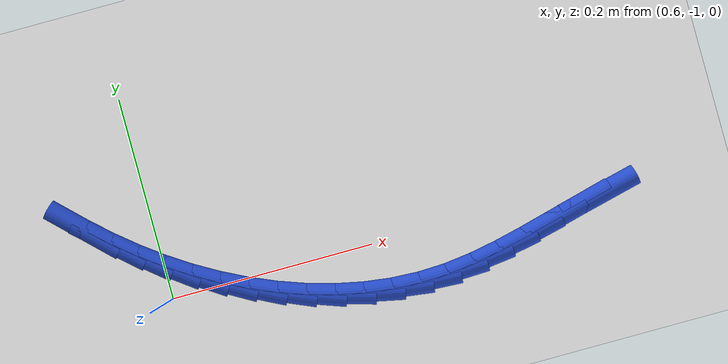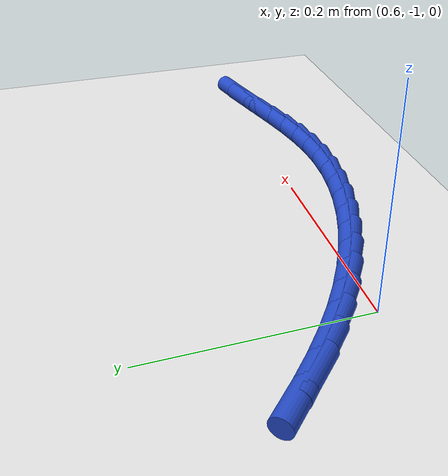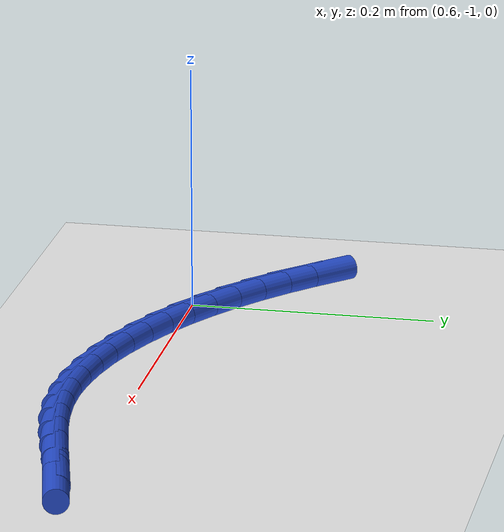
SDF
<sdf version="1.6">
 <world name="default">
  <model name="ground_plane">
   <static>1</static>
   <link name="link">
    <collision name="collision">
     <geometry><plane><normal>0 0 1</normal><size>100 100</size></plane></geometry>
     <surface><friction><ode><mu>100</mu><mu2>50</mu2></ode></friction></surface>
    </collision>
    <visual name="visual">
     <cast_shadows>0</cast_shadows>
     <geometry><plane><normal>0 0 1</normal><size>100 100</size></plane></geometry>
     <material>
      <script><uri>file://media/materials/scripts/gazebo.material</uri><name>Gazebo/WhiteGlow</name></script>
     </material>
    </visual>
   </link>
  </model>
  <model name="line">
   <link name="link_181">
    <pose>1.0240171814087178 -1.010796179785438 0.01 0 1.57 0.23840159338344116</pose>
    <collision name="collision">
     <geometry><cylinder><radius>0.01</radius><length>0.08</length></cylinder></geometry>
    </collision>
    <visual name="visual">
     <material>
      <script><name>Gazebo/Blue</name><uri>file://media/materials/scripts/gazebo.material</uri></script>
     </material>
     <geometry><cylinder><radius>0.01</radius><length>0.08</length></cylinder></geometry>
    </visual>
   </link>
   <link name="link_182">
    <pose>0.9971923332092902 -1.0173152411589155 0.01 0 1.57 0.255473787618553</pose>
    <collision name="collision">
     <geometry><cylinder><radius>0.01</radius><length>0.08</length></cylinder></geometry>
    </collision>
    <visual name="visual">
     <material>
      <script><name>Gazebo/Blue</name><uri>file://media/materials/scripts/gazebo.material</uri></script>
     </material>
     <geometry><cylinder><radius>0.01</radius><length>0.08</length></cylinder></geometry>
    </visual>
   </link>
   <link name="link_183">
    <pose>0.9704143220741572 -1.024309143966179 0.01 0 1.57 0.2523996663266468</pose>
    <collision name="collision">
     <geometry><cylinder><radius>0.01</radius><length>0.08</length></cylinder></geometry>
    </collision>
    <visual name="visual">
     <material>
      <script><name>Gazebo/Blue</name><uri>file://media/materials/scripts/gazebo.material</uri></script>
     </material>
     <geometry><cylinder><radius>0.01</radius><length>0.08</length></cylinder></geometry>
    </visual>
   </link>
   <link name="link_184">
    <pose>0.9436289415254057 -1.0312170833424503 0.01 0 1.57 0.22912176064138656</pose>
    <collision name="collision">
     <geometry><cylinder><radius>0.01</radius><length>0.08</length></cylinder></geometry>
    </collision>
    <visual name="visual">
     <material>
      <script><name>Gazebo/Blue</name><uri>file://media/materials/scripts/gazebo.material</uri></script>
     </material>
     <geometry><cylinder><radius>0.01</radius><length>0.08</length></cylinder></geometry>
    </visual>
   </link>
   <link name="link_185">
    <pose>0.9167819850851229 -1.0374782544229533 0.01 0 1.57 0.18527931556111654</pose>
    <collision name="collision">
     <geometry><cylinder><radius>0.01</radius><length>0.08</length></cylinder></geometry>
    </collision>
    <visual name="visual">
     <material>
      <script><name>Gazebo/Blue</name><uri>file://media/materials/scripts/gazebo.material</uri></script>
     </material>
     <geometry><cylinder><radius>0.01</radius><length>0.08</length></cylinder></geometry>
    </visual>
   </link>
   <link name="link_186">
    <pose>0.8898192462753983 -1.042531852342909 0.01 0 1.57 0.120493067175341</pose>
    <collision name="collision">
     <geometry><cylinder><radius>0.01</radius><length>0.08</length></cylinder></geometry>
    </collision>
    <visual name="visual">
     <material>
      <script><name>Gazebo/Blue</name><uri>file://media/materials/scripts/gazebo.material</uri></script>
     </material>
     <geometry><cylinder><radius>0.01</radius><length>0.08</length></cylinder></geometry>
    </visual>
   </link>
   <link name="link_187">
    <pose>0.8626865186183191 -1.045817072237541 0.01 0 1.57 0.03667784082531602</pose>
    <collision name="collision">
     <geometry><cylinder><radius>0.01</radius><length>0.08</length></cylinder></geometry>
    </collision>
    <visual name="visual">
     <material>
      <script><name>Gazebo/Blue</name><uri>file://media/materials/scripts/gazebo.material</uri></script>
     </material>
     <geometry><cylinder><radius>0.01</radius><length>0.08</length></cylinder></geometry>
    </visual>
   </link>
   <link name="link_188">
    <pose>0.8353429459324077 -1.0468204254094364 0.01 0 1.57 -0.04972718320766954</pose>
    <collision name="collision">
     <geometry><cylinder><radius>0.01</radius><length>0.08</length></cylinder></geometry>
    </collision>
    <visual name="visual">
     <material>
      <script><name>Gazebo/Blue</name><uri>file://media/materials/scripts/gazebo.material</uri></script>
     </material>
     <geometry><cylinder><radius>0.01</radius><length>0.08</length></cylinder></geometry>
    </visual>
   </link>
   <link name="link_189">
    <pose>0.8078674724527282 -1.0454530202169297 0.01 0 1.57 -0.13043578373403036</pose>
    <collision name="collision">
     <geometry><cylinder><radius>0.01</radius><length>0.08</length></cylinder></geometry>
    </collision>
    <visual name="visual">
     <material>
      <script><name>Gazebo/Blue</name><uri>file://media/materials/scripts/gazebo.material</uri></script>
     </material>
     <geometry><cylinder><radius>0.01</radius><length>0.08</length></cylinder></geometry>
    </visual>
   </link>
   <link name="link_190">
    <pose>0.780402288371679 -1.0418501215617757 0.01 0 1.57 -0.2057839952937523</pose>
    <collision name="collision">
     <geometry><cylinder><radius>0.01</radius><length>0.08</length></cylinder></geometry>
    </collision>
    <visual name="visual">
     <material>
      <script><name>Gazebo/Blue</name><uri>file://media/materials/scripts/gazebo.material</uri></script>
     </material>
     <geometry><cylinder><radius>0.01</radius><length>0.08</length></cylinder></geometry>
    </visual>
   </link>
   <link name="link_191">
    <pose>0.7530901550147838 -1.036149018557749 0.01 0 1.57 -0.2763503448902056</pose>
    <collision name="collision">
     <geometry><cylinder><radius>0.01</radius><length>0.08</length></cylinder></geometry>
    </collision>
    <visual name="visual">
     <material>
      <script><name>Gazebo/Blue</name><uri>file://media/materials/scripts/gazebo.material</uri></script>
     </material>
     <geometry><cylinder><radius>0.01</radius><length>0.08</length></cylinder></geometry>
    </visual>
   </link>
   <link name="link_192">
    <pose>0.7260738337075652 -1.0284870003186246 0.01 0 1.57 -0.3428100785792593</pose>
    <collision name="collision">
     <geometry><cylinder><radius>0.01</radius><length>0.08</length></cylinder></geometry>
    </collision>
    <visual name="visual">
     <material>
      <script><name>Gazebo/Blue</name><uri>file://media/materials/scripts/gazebo.material</uri></script>
     </material>
     <geometry><cylinder><radius>0.01</radius><length>0.08</length></cylinder></geometry>
    </visual>
   </link>
   <link name="link_193">
    <pose>0.6994960857755483 -1.019001355958177 0.01 0 1.57 -0.40588779063675906</pose>
    <collision name="collision">
     <geometry><cylinder><radius>0.01</radius><length>0.08</length></cylinder></geometry>
    </collision>
    <visual name="visual">
     <material>
      <script><name>Gazebo/Blue</name><uri>file://media/materials/scripts/gazebo.material</uri></script>
     </material>
     <geometry><cylinder><radius>0.01</radius><length>0.08</length></cylinder></geometry>
    </visual>
   </link>
   <link name="link_194">
    <pose>0.6734996725442555 -1.0078293745901807 0.01 0 1.57 -0.4663305953373531</pose>
    <collision name="collision">
     <geometry><cylinder><radius>0.01</radius><length>0.08</length></cylinder></geometry>
    </collision>
    <visual name="visual">
     <material>
      <script><name>Gazebo/Blue</name><uri>file://media/materials/scripts/gazebo.material</uri></script>
     </material>
     <geometry><cylinder><radius>0.01</radius><length>0.08</length></cylinder></geometry>
    </visual>
   </link>
   <link name="link_195">
    <pose>0.64822735533921 -0.9951083453284111 0.01 0 1.57 -0.5248973834462586</pose>
    <collision name="collision">
     <geometry><cylinder><radius>0.01</radius><length>0.08</length></cylinder></geometry>
    </collision>
    <visual name="visual">
     <material>
      <script><name>Gazebo/Blue</name><uri>file://media/materials/scripts/gazebo.material</uri></script>
     </material>
     <geometry><cylinder><radius>0.01</radius><length>0.08</length></cylinder></geometry>
    </visual>
   </link>
   <link name="link_196">
    <pose>0.6238218954859358 -0.9809755572866423 0.01 0 1.57 -0.5823601117154732</pose>
    <collision name="collision">
     <geometry><cylinder><radius>0.01</radius><length>0.08</length></cylinder></geometry>
    </collision>
    <visual name="visual">
     <material>
      <script><name>Gazebo/Blue</name><uri>file://media/materials/scripts/gazebo.material</uri></script>
     </material>
     <geometry><cylinder><radius>0.01</radius><length>0.08</length></cylinder></geometry>
    </visual>
   </link>
   <link name="link_197">
    <pose>0.6004260543099559 -0.9655682995786494 0.01 0 1.57 -0.6387675233658759</pose>
    <collision name="collision">
     <geometry><cylinder><radius>0.01</radius><length>0.08</length></cylinder></geometry>
    </collision>
    <visual name="visual">
     <material>
      <script><name>Gazebo/Blue</name><uri>file://media/materials/scripts/gazebo.material</uri></script>
     </material>
     <geometry><cylinder><radius>0.01</radius><length>0.08</length></cylinder></geometry>
    </visual>
   </link>
   <link name="link_198">
    <pose>0.5781472363356934 -0.949023383592347 0.01 0 1.57 -0.6904485178297186</pose>
    <collision name="collision">
     <geometry><cylinder><radius>0.01</radius><length>0.08</length></cylinder></geometry>
    </collision>
    <visual name="visual">
     <material>
      <script><name>Gazebo/Blue</name><uri>file://media/materials/scripts/gazebo.material</uri></script>
     </material>
     <geometry><cylinder><radius>0.01</radius><length>0.08</length></cylinder></geometry>
    </visual>
   </link>
   <link name="link_199">
    <pose>0.5569046394700965 -0.9314750777489408 0.01 0 1.57 -0.7356226584504998</pose>
    <collision name="collision">
     <geometry><cylinder><radius>0.01</radius><length>0.08</length></cylinder></geometry>
    </collision>
    <visual name="visual">
     <material>
      <script><name>Gazebo/Blue</name><uri>file://media/materials/scripts/gazebo.material</uri></script>
     </material>
     <geometry><cylinder><radius>0.01</radius><length>0.08</length></cylinder></geometry>
    </visual>
   </link>
   <link name="link_200">
    <pose>0.5365550861701539 -0.9130568076794361 0.01 0 1.57 -0.7739182410122458</pose>
    <collision name="collision">
     <geometry><cylinder><radius>0.01</radius><length>0.08</length></cylinder></geometry>
    </collision>
    <visual name="visual">
     <material>
      <script><name>Gazebo/Blue</name><uri>file://media/materials/scripts/gazebo.material</uri></script>
     </material>
     <geometry><cylinder><radius>0.01</radius><length>0.08</length></cylinder></geometry>
    </visual>
   </link>
  </model>
 </world>
</sdf>
